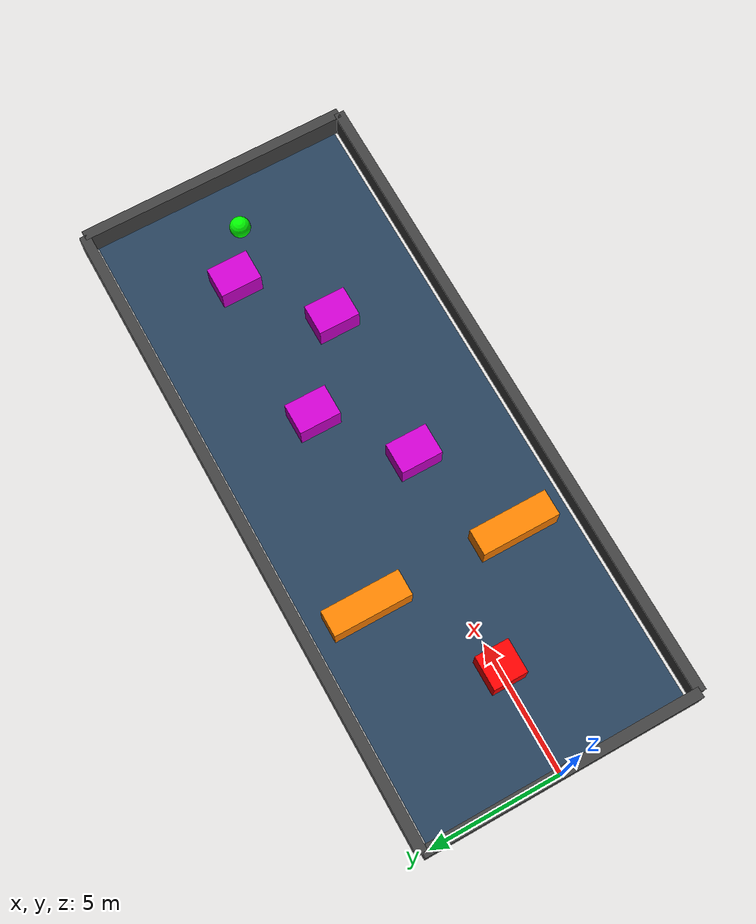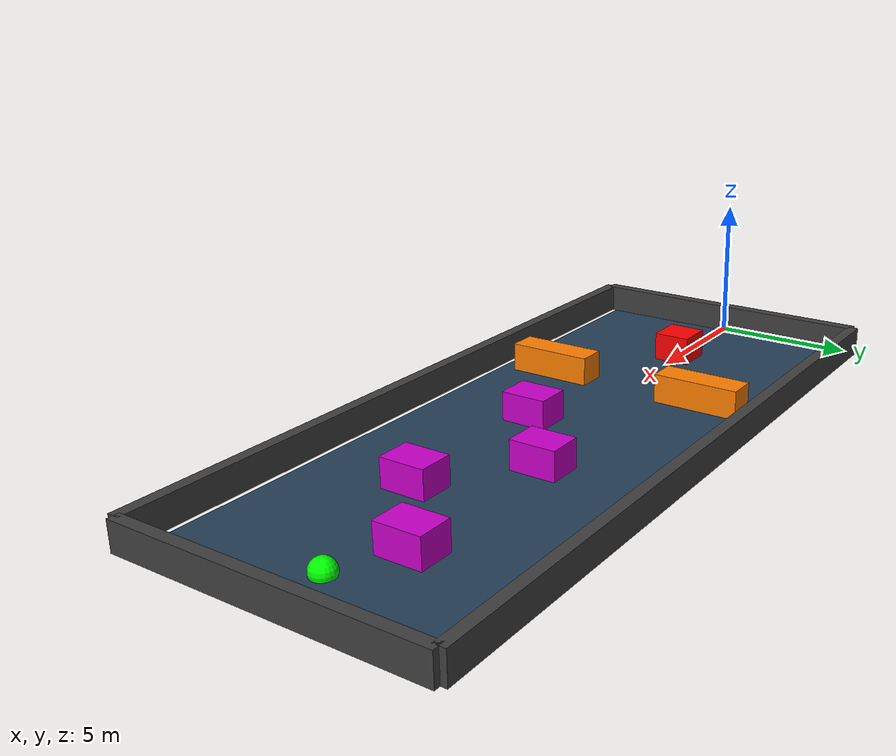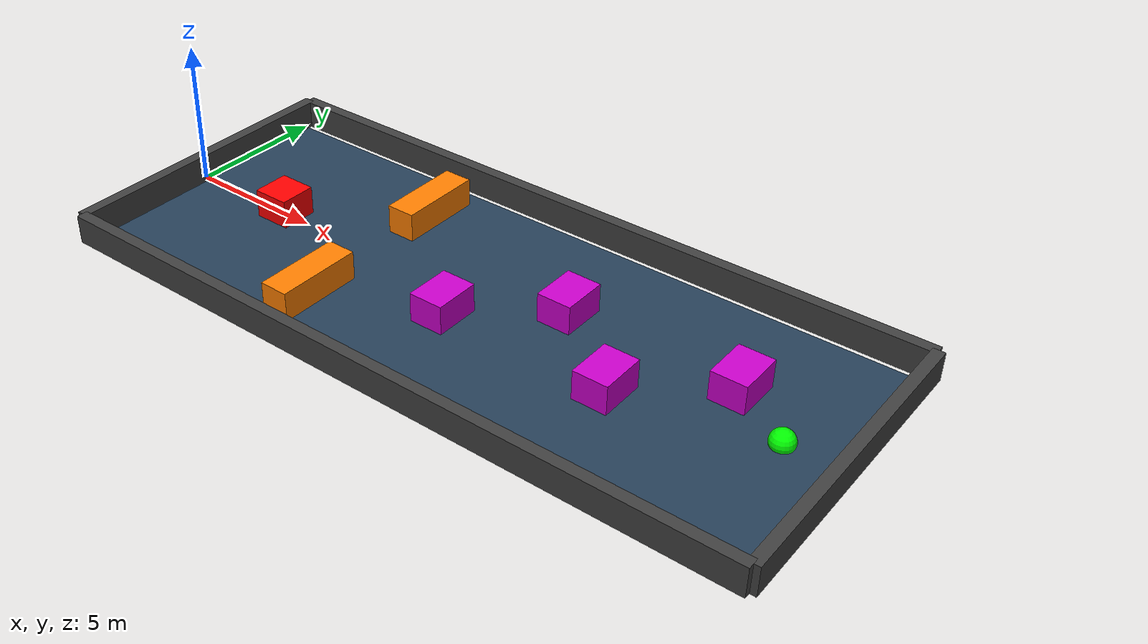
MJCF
<mujoco model="Empty_Corridor_25m">

  <!-- COMPILER + OPTION -->
  <compiler angle="radian" coordinate="local" autolimits="true"/>
  <option timestep="0.01" cone="elliptic" integrator="RK4" gravity="0 0 -9.81"/>

  <!-- VISUAL STYLE (bunker style) -->
  <visual>
    <headlight diffuse="0.6 0.6 0.6"
               ambient="0.1 0.1 0.1"
               specular="0 0 0"/>

    <rgba haze="0.15 0.25 0.35 1"/>

    <global azimuth="135"
            elevation="-28"/>
  </visual>

  <!-- ASSETS (ground texture style giống bunker) -->
  <asset>
    <texture type="skybox"
             builtin="gradient"
             rgb1="0.3 0.5 0.7"
             rgb2="0 0 0"
             width="512"
             height="3072"/>

    <texture type="2d"
             name="groundplane"
             builtin="checker"
             mark="edge"
             rgb1="0.2 0.3 0.4"
             rgb2="0.1 0.2 0.3"
             markrgb="0.8 0.8 0.8"
             width="300"
             height="300"/>

    <material name="groundplane"
              texture="groundplane"
              texuniform="true"
              texrepeat="5 5"
              reflectance="0.2"/>
  </asset>

  <!-- WORLD -->
  <worldbody>

    <!-- LIGHT -->
    <light name="spotlight"
           pos="0 0 100"
           mode="targetbodycom"
           target="goal"
           castshadow="false"/>

    <!-- FLOOR (giữ nguyên nhưng đổi style bunker) -->
    <geom name="floor"
          type="plane"
          pos="12.5 0 0"
          size="12.5 5 0.05"
          material="groundplane"
          conaffinity="1"
          condim="3"/>

    <!-- WALLS (giữ nguyên 100%) -->

    <body name="wall_top" pos="12.5 5.3 0.5">
      <geom type="box" size="12.5 0.2 0.5" rgba="0.25 0.25 0.25 1"/>
    </body>

    <body name="wall_bottom" pos="12.5 -5.3 0.5">
      <geom type="box" size="12.5 0.2 0.5" rgba="0.25 0.25 0.25 1"/>
    </body>

    <body name="wall_start" pos="0 0 0.5">
      <geom type="box" size="0.2 5.3 0.5" rgba="0.25 0.25 0.25 1"/>
    </body>

    <body name="wall_goal" pos="25 0 0.5">
      <geom type="box" size="0.2 5.3 0.5" rgba="0.25 0.25 0.25 1"/>
    </body>

    <!-- OBSTACLES (giữ nguyên toàn bộ) -->

    <body name="obstacle_0" pos="4 0 0.5">
      <geom type="box" size="0.65 0.65 0.5" rgba="1 0 0 1"/>
    </body>

    <body name="obstacle_1" pos="8 2.9 0.5">
      <geom type="box" size="0.5 1.5 0.5" rgba="1 0.5 0 1"/>
    </body>

    <body name="obstacle_2" pos="8 -2.9 0.5">
      <geom type="box" size="0.5 1.5 0.5" rgba="1 0.5 0 1"/>
    </body>

    <body name="obstacle_3" pos="12 -1.2 0.5">
      <geom type="box" size="0.6 0.8 0.5" rgba="0.8 0 0.8 1"/>
    </body>

    <body name="obstacle_4" pos="15 1.2 0.5">
      <geom type="box" size="0.6 0.8 0.5" rgba="0.8 0 0.8 1"/>
    </body>

    <body name="obstacle_5" pos="18 -1.2 0.5">
      <geom type="box" size="0.6 0.8 0.5" rgba="0.8 0 0.8 1"/>
    </body>

    <body name="obstacle_6" pos="21 1.2 0.5">
      <geom type="box" size="0.6 0.8 0.5" rgba="0.8 0 0.8 1"/>
    </body>

    <!-- GOAL -->

    <body name="goal" pos="23 0 0.1" mocap="true">
      <site name="goal_site"
            type="sphere"
            size="0.4"
            rgba="0 1 0 0.9"/>
    </body>

  </worldbody>

</mujoco>
